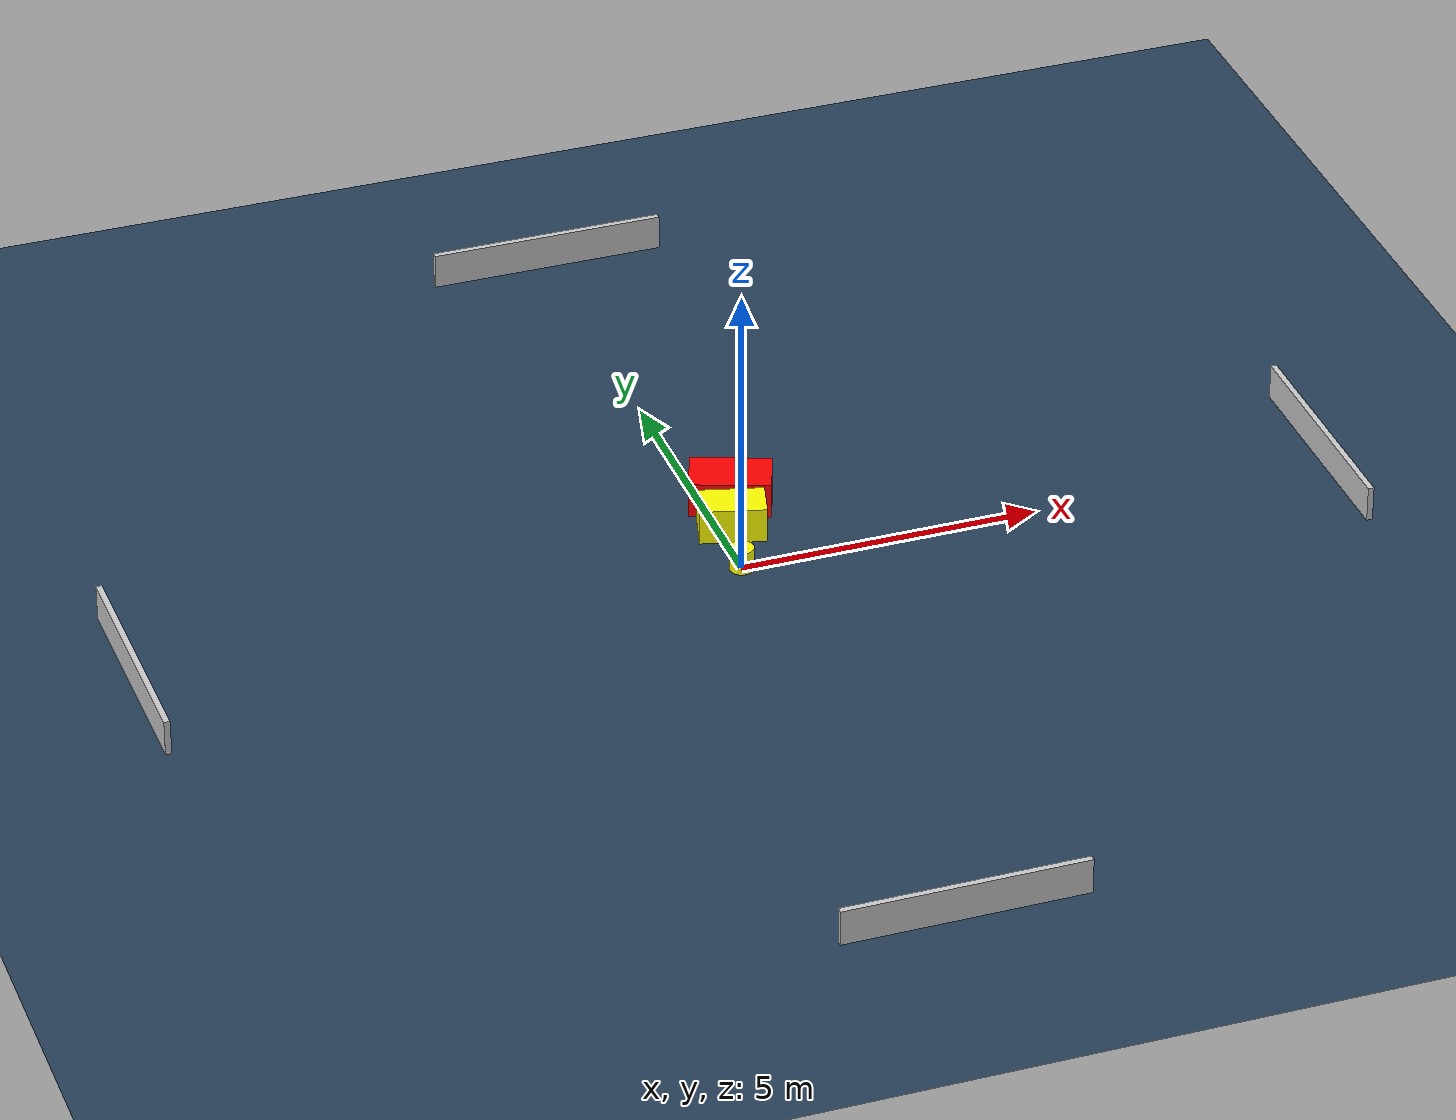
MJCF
<?xml version="1.0" ?>
<mujoco model="generated_environment">
  <option timestep="0.01" integrator="RK4" cone="elliptic"/>
  <default>
    <geom density="1"/>
  </default>
  <asset>
    <texture builtin="gradient" height="3072" name="skybox" rgb1="0.3 0.5 0.7" rgb2="0 0 0" type="skybox" width="512"/>
    <texture builtin="checker" height="300" name="groundplane" rgb1="0.2 0.3 0.4" rgb2="0.1 0.2 0.3" type="2d" width="300"/>
    <material name="groundplane" reflectance="0.2" texrepeat="5 5" texture="groundplane"/>
  </asset>
  <worldbody>
    <light dir="0 0 -1" directional="true" pos="0 0 1.5"/>
    <geom condim="3" friction="0.5 0.005 0.001" material="groundplane" name="floor" pos="0 0 0" size="0 0 0.05" type="plane"/>
    <body name="walls">
      <geom name="wall_1" condim="4" pos="-10.0 0.0 0.3" rgba="0.800000011920929 0.800000011920929 0.800000011920929 1.0" size="0.05 2.0 0.3" type="box"/>
      <geom name="wall_2" condim="4" pos="10.0 0.0 0.3" rgba="0.800000011920929 0.800000011920929 0.800000011920929 1.0" size="0.05 2.0 0.3" type="box"/>
      <geom name="wall_3" condim="4" pos="0.0 -10.0 0.3" rgba="0.800000011920929 0.800000011920929 0.800000011920929 1.0" size="2.0 0.05 0.3" type="box"/>
      <geom name="wall_4" condim="4" pos="0.0 10.0 0.3" rgba="0.800000011920929 0.800000011920929 0.800000011920929 1.0" size="2.0 0.05 0.3" type="box"/>
    </body>
    <body name="robot">
      <joint name="joint_x" type="slide" pos="0 0 0" axis="1 0 0"/>
      <joint name="joint_y" type="slide" pos="0 0 0" axis="0 1 0"/>
      <geom name="robot" type="cylinder" pos="0.0 0.0 0.2" size="0.2 0.2 0.0" mass="5.0" friction="1.0 0.005 0.0001" condim="4" rgba="1.0 1.0 0.0 1.0"/>
    </body>
    <body name="obstacle_1_movable">
      <geom name="obstacle_1_movable" condim="4" pos="0.21119716856548867 1.0740756760556114 0.3" euler="0 0 164.87181077762716" friction="0.0 0.005 0.001" rgba="1.0 1.0 0.0 1.0" size="0.5465937297273944 0.33062768297004147 0.3" type="box" mass="0.1"/>
      <joint type="free"/>
    </body>
    <body name="obstacle_2_static">
      <geom name="obstacle_2_static" condim="4" pos="0.4693294222443857 1.888268848943247 0.3" euler="0 0 339.4512805820853" friction="0.0 0.005 0.001" rgba="1.0 0.0 0.0 1.0" size="0.6702220752755285 0.41428867287180693 0.3" type="box"/>
    </body>
  </worldbody>
  <actuator>
    <motor name="actuator_x" joint="joint_x" gear="1" ctrlrange="-1 1"/>
    <motor name="actuator_y" joint="joint_y" gear="1" ctrlrange="-1 1"/>
  </actuator>
</mujoco>
